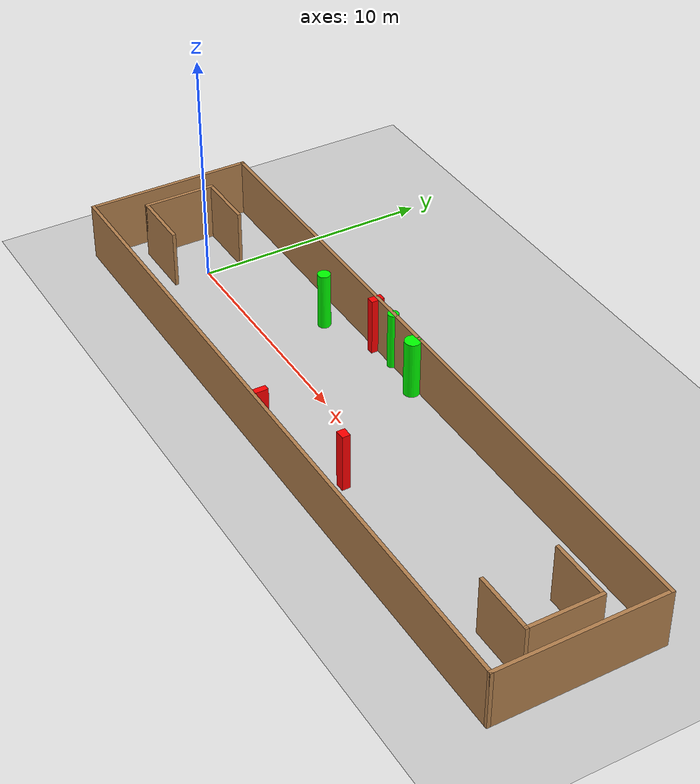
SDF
<sdf version="1.7">
 <world name="default">
  <light name="sun" type="directional">
   <pose>0 0 10 0 -0 0</pose>
   <diffuse>0.8 0.8 0.8 1</diffuse>
   <specular>0.2 0.2 0.2 1</specular>
   <attenuation>
    <range>1000</range>
    <constant>0.9</constant>
    <linear>0.01</linear>
    <quadratic>0.001</quadratic>
   </attenuation>
   <direction>-0.5 0.1 -0.9</direction>
   <spot><inner_angle>0</inner_angle><outer_angle>0</outer_angle><falloff>0</falloff></spot>
  </light>
  <model name="ground_plane">
   <static>1</static>
   <link name="link">
    <collision name="collision">
     <geometry><plane><normal>0 0 1</normal><size>100 100</size></plane></geometry>
     <surface>
      <contact><collide_bitmask>65535</collide_bitmask></contact>
      <friction><ode><mu>100</mu><mu2>50</mu2></ode></friction>
     </surface>
    </collision>
    <visual name="visual">
     <cast_shadows>0</cast_shadows>
     <geometry><plane><normal>0 0 1</normal><size>100 100</size></plane></geometry>
     <material>
      <script><uri>file://media/materials/scripts/gazebo.material</uri><name>Gazebo/Grey</name></script>
     </material>
    </visual>
   </link>
  </model>
  <gravity>0 0 -9.8</gravity>
  <magnetic_field>6e-06 2.3e-05 -4.2e-05</magnetic_field>
  <atmosphere type="adiabatic"/>
  <physics type="ode">
   <max_step_size>0.001</max_step_size>
   <real_time_factor>1</real_time_factor>
   <real_time_update_rate>1000</real_time_update_rate>
  </physics>
  <scene><ambient>0.4 0.4 0.4 1</ambient><background>0.7 0.7 0.7 1</background><shadows>1</shadows></scene>
  <spherical_coordinates>
   <surface_model>EARTH_WGS84</surface_model>
   <latitude_deg>0</latitude_deg>
   <longitude_deg>0</longitude_deg>
   <elevation>0</elevation>
   <heading_deg>0</heading_deg>
  </spherical_coordinates>
  <model name="my_base_walls">
   <link name="Wall_0">
    <collision name="Wall_0_Collision">
     <geometry><box><size>7.15 0.15 2.5</size></box></geometry>
     <pose>0 0 1.25 0 -0 0</pose>
    </collision>
    <visual name="Wall_0_Visual">
     <pose>0 0 1.25 0 -0 0</pose>
     <geometry><box><size>7.15 0.15 2.5</size></box></geometry>
     <material>
      <script><uri>file://media/materials/scripts/gazebo.material</uri><name>Gazebo/Wood</name></script>
      <ambient>1 1 1 1</ambient>
     </material>
     <meta><layer>0</layer></meta>
    </visual>
    <pose>-15 0 0 0 -0 1.5708</pose>
   </link>
   <link name="Wall_10">
    <collision name="Wall_10_Collision">
     <geometry><box><size>2.65 0.15 2.5</size></box></geometry>
     <pose>0 0 1.25 0 -0 0</pose>
    </collision>
    <visual name="Wall_10_Visual">
     <pose>0 0 1.25 0 -0 0</pose>
     <geometry><box><size>2.65 0.15 2.5</size></box></geometry>
     <material>
      <script><uri>file://media/materials/scripts/gazebo.material</uri><name>Gazebo/Wood</name></script>
      <ambient>1 1 1 1</ambient>
     </material>
     <meta><layer>0</layer></meta>
    </visual>
    <pose>-12.75 -1.5 0 0 -0 0</pose>
   </link>
   <link name="Wall_12">
    <collision name="Wall_12_Collision">
     <geometry><box><size>2.65 0.15 2.5</size></box></geometry>
     <pose>0 0 1.25 0 -0 0</pose>
    </collision>
    <visual name="Wall_12_Visual">
     <pose>0 0 1.25 0 -0 0</pose>
     <geometry><box><size>2.65 0.15 2.5</size></box></geometry>
     <material>
      <script><uri>file://media/materials/scripts/gazebo.material</uri><name>Gazebo/Wood</name></script>
      <ambient>1 1 1 1</ambient>
     </material>
     <meta><layer>0</layer></meta>
    </visual>
    <pose>-12.75 1.5 0 0 -0 0</pose>
   </link>
   <link name="Wall_14">
    <collision name="Wall_14_Collision">
     <geometry><box><size>3.15 0.15 2.5</size></box></geometry>
     <pose>0 0 1.25 0 -0 0</pose>
    </collision>
    <visual name="Wall_14_Visual">
     <pose>0 0 1.25 0 -0 0</pose>
     <geometry><box><size>3.15 0.15 2.5</size></box></geometry>
     <material>
      <script><uri>file://media/materials/scripts/gazebo.material</uri><name>Gazebo/Wood</name></script>
      <ambient>1 1 1 1</ambient>
     </material>
     <meta><layer>0</layer></meta>
    </visual>
    <pose>14 0 0 0 -0 -1.5708</pose>
   </link>
   <link name="Wall_15">
    <collision name="Wall_15_Collision">
     <geometry><box><size>2.65 0.15 2.5</size></box></geometry>
     <pose>0 0 1.25 0 -0 0</pose>
    </collision>
    <visual name="Wall_15_Visual">
     <pose>0 0 1.25 0 -0 0</pose>
     <geometry><box><size>2.65 0.15 2.5</size></box></geometry>
     <material>
      <script><uri>file://media/materials/scripts/gazebo.material</uri><name>Gazebo/Wood</name></script>
      <ambient>1 1 1 1</ambient>
     </material>
     <meta><layer>0</layer></meta>
    </visual>
    <pose>12.75 -1.5 0 0 -0 3.14159</pose>
   </link>
   <link name="Wall_17">
    <collision name="Wall_17_Collision">
     <geometry><box><size>2.65 0.15 2.5</size></box></geometry>
     <pose>0 0 1.25 0 -0 0</pose>
    </collision>
    <visual name="Wall_17_Visual">
     <pose>0 0 1.25 0 -0 0</pose>
     <geometry><box><size>2.65 0.15 2.5</size></box></geometry>
     <material>
      <script><uri>file://media/materials/scripts/gazebo.material</uri><name>Gazebo/Wood</name></script>
      <ambient>1 1 1 1</ambient>
     </material>
     <meta><layer>0</layer></meta>
    </visual>
    <pose>12.75 1.5 0 0 -0 3.14159</pose>
   </link>
   <link name="Wall_2">
    <collision name="Wall_2_Collision">
     <geometry><box><size>30.15 0.15 2.5</size></box></geometry>
     <pose>0 0 1.25 0 -0 0</pose>
    </collision>
    <visual name="Wall_2_Visual">
     <pose>0 0 1.25 0 -0 0</pose>
     <geometry><box><size>30.15 0.15 2.5</size></box></geometry>
     <material>
      <script><uri>file://media/materials/scripts/gazebo.material</uri><name>Gazebo/Wood</name></script>
      <ambient>1 1 1 1</ambient>
     </material>
     <meta><layer>0</layer></meta>
    </visual>
    <pose>-0 -3.5 0 0 -0 0</pose>
   </link>
   <link name="Wall_4">
    <collision name="Wall_4_Collision">
     <geometry><box><size>30.15 0.15 2.5</size></box></geometry>
     <pose>0 0 1.25 0 -0 0</pose>
    </collision>
    <visual name="Wall_4_Visual">
     <pose>0 0 1.25 0 -0 0</pose>
     <geometry><box><size>30.15 0.15 2.5</size></box></geometry>
     <material>
      <script><uri>file://media/materials/scripts/gazebo.material</uri><name>Gazebo/Wood</name></script>
      <ambient>1 1 1 1</ambient>
     </material>
     <meta><layer>0</layer></meta>
    </visual>
    <pose>-0 3.5 0 0 -0 0</pose>
   </link>
   <link name="Wall_6">
    <collision name="Wall_6_Collision">
     <geometry><box><size>7.15 0.15 2.5</size></box></geometry>
     <pose>0 0 1.25 0 -0 0</pose>
    </collision>
    <visual name="Wall_6_Visual">
     <pose>0 0 1.25 0 -0 0</pose>
     <geometry><box><size>7.15 0.15 2.5</size></box></geometry>
     <material>
      <script><uri>file://media/materials/scripts/gazebo.material</uri><name>Gazebo/Wood</name></script>
      <ambient>1 1 1 1</ambient>
     </material>
     <meta><layer>0</layer></meta>
    </visual>
    <pose>15 0 0 0 -0 -1.5708</pose>
   </link>
   <link name="Wall_9">
    <collision name="Wall_9_Collision">
     <geometry><box><size>3.15 0.15 2.5</size></box></geometry>
     <pose>0 0 1.25 0 -0 0</pose>
    </collision>
    <visual name="Wall_9_Visual">
     <pose>0 0 1.25 0 -0 0</pose>
     <geometry><box><size>3.15 0.15 2.5</size></box></geometry>
     <material>
      <script><uri>file://media/materials/scripts/gazebo.material</uri><name>Gazebo/Wood</name></script>
      <ambient>1 1 1 1</ambient>
     </material>
     <meta><layer>0</layer></meta>
    </visual>
    <pose>-14 0 0 0 -0 -1.5708</pose>
   </link>
   <static>1</static>
   <pose>11.5 0 0 0 -0 0</pose>
  </model>
  <model name="cylinder1">
   <static>1</static>
   <link name="link">
    <inertial>
     <mass>1</mass>
     <inertia><ixx>0.5</ixx><ixy>0</ixy><ixz>0</ixz><iyy>0.5</iyy><iyz>0</iyz><izz>1</izz></inertia>
    </inertial>
    <collision name="collision">
     <geometry><cylinder><radius>0.3378051512873915</radius><length>2.5</length></cylinder></geometry>
    </collision>
    <visual name="visual">
     <geometry><cylinder><radius>0.3378051512873915</radius><length>2.5</length></cylinder></geometry>
     <material>
      <ambient>0 1 0 1</ambient>
      <diffuse>0 1 0 1</diffuse>
      <specular>0.1 0.1 0.1 1</specular>
      <emissive>0 0 0 0</emissive>
     </material>
    </visual>
   </link>
   <pose>11.040396298656374 3.2223419955140447 1.25 0 0 0</pose>
  </model>
  <model name="cylinder2">
   <static>1</static>
   <link name="link">
    <inertial>
     <mass>1</mass>
     <inertia><ixx>0.5</ixx><ixy>0</ixy><ixz>0</ixz><iyy>0.5</iyy><iyz>0</iyz><izz>1</izz></inertia>
    </inertial>
    <collision name="collision">
     <geometry><cylinder><radius>0.22212105500421778</radius><length>2.5</length></cylinder></geometry>
    </collision>
    <visual name="visual">
     <geometry><cylinder><radius>0.22212105500421778</radius><length>2.5</length></cylinder></geometry>
     <material>
      <ambient>0 1 0 1</ambient>
      <diffuse>0 1 0 1</diffuse>
      <specular>0.1 0.1 0.1 1</specular>
      <emissive>0 0 0 0</emissive>
     </material>
    </visual>
   </link>
   <pose>9.190355899006297 3.4767598266402286 1.25 0 0 0</pose>
  </model>
  <model name="cylinder3">
   <static>1</static>
   <link name="link">
    <inertial>
     <mass>1</mass>
     <inertia><ixx>0.5</ixx><ixy>0</ixy><ixz>0</ixz><iyy>0.5</iyy><iyz>0</iyz><izz>1</izz></inertia>
    </inertial>
    <collision name="collision">
     <geometry><cylinder><radius>0.268262944394034</radius><length>2.5</length></cylinder></geometry>
    </collision>
    <visual name="visual">
     <geometry><cylinder><radius>0.268262944394034</radius><length>2.5</length></cylinder></geometry>
     <material>
      <ambient>0 1 0 1</ambient>
      <diffuse>0 1 0 1</diffuse>
      <specular>0.1 0.1 0.1 1</specular>
      <emissive>0 0 0 0</emissive>
     </material>
    </visual>
   </link>
   <pose>5.553375260213741 2.45878436041707 1.25 0 0 0</pose>
  </model>
  <model name="box1">
   <static>1</static>
   <link name="link">
    <inertial>
     <mass>1</mass>
     <inertia><ixx>0.083</ixx><ixy>0</ixy><ixz>0</ixz><iyy>0.083</iyy><iyz>0</iyz><izz>0.083</izz></inertia>
    </inertial>
    <collision name="collision">
     <geometry><box><size>0.2554341347136582 0.5535400607716294 2.5</size></box></geometry>
    </collision>
    <visual name="visual">
     <geometry><box><size>0.2554341347136582 0.5535400607716294 2.5</size></box></geometry>
     <material>
      <ambient>1 0 0 1</ambient>
      <diffuse>1 0 0 1</diffuse>
      <specular>0.1 0.1 0.1 1</specular>
      <emissive>0 0 0 0</emissive>
     </material>
    </visual>
    <sensor name="my_contact" type="contact">
     <contact><collision>box_collision</collision><topic>__default_topic__</topic></contact>
    </sensor>
   </link>
   <pose>10.760543660919566 -3.16152128814626 1.25 0 0 0</pose>
  </model>
  <model name="box2">
   <static>1</static>
   <link name="link">
    <inertial>
     <mass>1</mass>
     <inertia><ixx>0.083</ixx><ixy>0</ixy><ixz>0</ixz><iyy>0.083</iyy><iyz>0</iyz><izz>0.083</izz></inertia>
    </inertial>
    <collision name="collision">
     <geometry><box><size>0.41135065220377454 0.3399698342821141 2.5</size></box></geometry>
    </collision>
    <visual name="visual">
     <geometry><box><size>0.41135065220377454 0.3399698342821141 2.5</size></box></geometry>
     <material>
      <ambient>1 0 0 1</ambient>
      <diffuse>1 0 0 1</diffuse>
      <specular>0.1 0.1 0.1 1</specular>
      <emissive>0 0 0 0</emissive>
     </material>
    </visual>
    <sensor name="my_contact" type="contact">
     <contact><collision>box_collision</collision><topic>__default_topic__</topic></contact>
    </sensor>
   </link>
   <pose>14.435107855196678 -1.7616766855532278 1.25 0 0 0</pose>
  </model>
  <model name="box3">
   <static>1</static>
   <link name="link">
    <inertial>
     <mass>1</mass>
     <inertia><ixx>0.083</ixx><ixy>0</ixy><ixz>0</ixz><iyy>0.083</iyy><iyz>0</iyz><izz>0.083</izz></inertia>
    </inertial>
    <collision name="collision">
     <geometry><box><size>0.31889479709245394 0.5489409729806844 2.5</size></box></geometry>
    </collision>
    <visual name="visual">
     <geometry><box><size>0.31889479709245394 0.5489409729806844 2.5</size></box></geometry>
     <material>
      <ambient>1 0 0 1</ambient>
      <diffuse>1 0 0 1</diffuse>
      <specular>0.1 0.1 0.1 1</specular>
      <emissive>0 0 0 0</emissive>
     </material>
    </visual>
    <sensor name="my_contact" type="contact">
     <contact><collision>box_collision</collision><topic>__default_topic__</topic></contact>
    </sensor>
   </link>
   <pose>8.004147692691694 3.4123747834963627 1.25 0 0 0</pose>
  </model>
 </world>
</sdf>
